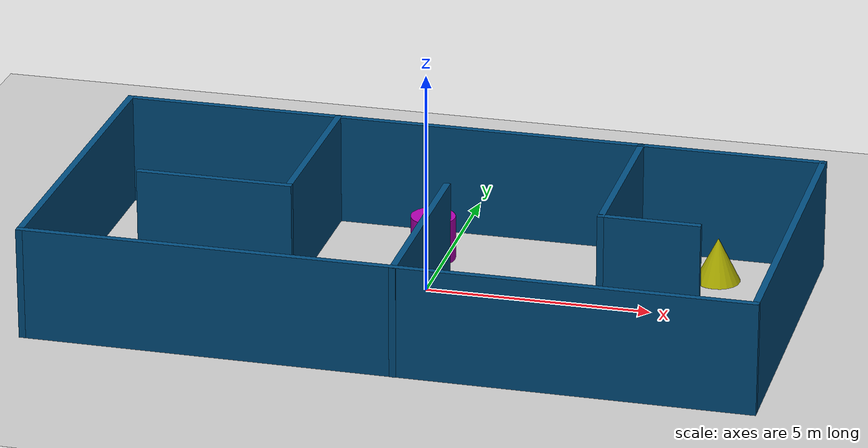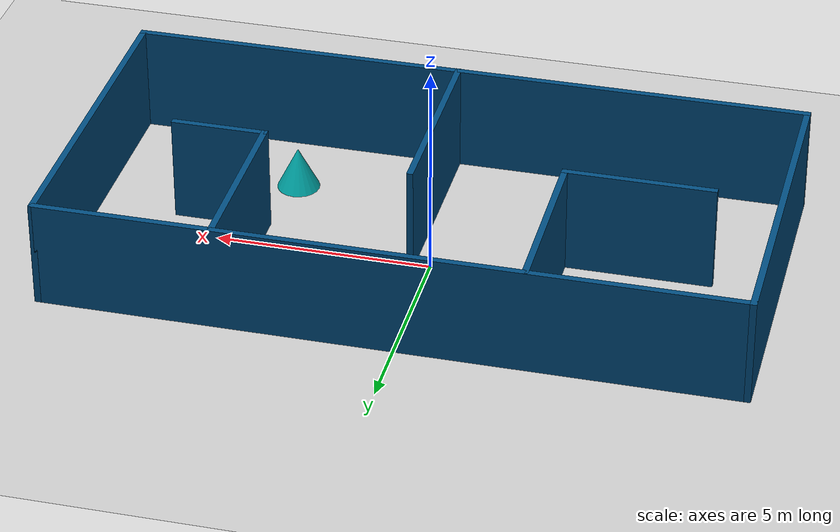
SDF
<sdf version="1.10">
 <world name="tugbot_nav_world">
  <plugin name="gz::sim::systems::Physics" filename="gz-sim-physics-system"/>
  <plugin name="gz::sim::systems::UserCommands" filename="gz-sim-user-commands-system"/>
  <plugin name="gz::sim::systems::SceneBroadcaster" filename="gz-sim-scene-broadcaster-system"/>
  <plugin name="gz::sim::systems::Sensors" filename="gz-sim-sensors-system">
   <render_engine>ogre2</render_engine>
  </plugin>
  <plugin name="gz::sim::systems::Imu" filename="gz-sim-imu-system"/>
  <scene>
   <shadows>false</shadows>
   <ambient>0.400000006 0.400000006 0.400000006 1</ambient>
   <background>0.699999988 0.699999988 0.699999988 1</background>
  </scene>
  <physics name="3ms" type="ode">
   <max_step_size>0.0030000000000000001</max_step_size>
   <real_time_factor>1</real_time_factor>
   <real_time_update_rate>1000</real_time_update_rate>
  </physics>
  <gravity>0 0 -9.8000000000000007</gravity>
  <magnetic_field>5.5644999999999998e-06 2.2875799999999999e-05 -4.2388400000000002e-05</magnetic_field>
  <atmosphere type="adiabatic"/>
  <model name="ground_plane">
   <static>true</static>
   <link name="link">
    <collision name="collision">
     <geometry><plane><normal>0 0 1</normal><size>1 1</size></plane></geometry>
    </collision>
    <visual name="visual">
     <geometry><plane><normal>0 0 1</normal><size>100 100</size></plane></geometry>
     <material>
      <ambient>0.800000012 0.800000012 0.800000012 1</ambient>
      <diffuse>0.800000012 0.800000012 0.800000012 1</diffuse>
      <specular>0.800000012 0.800000012 0.800000012 1</specular>
     </material>
    </visual>
    <inertial>
     <mass>1</mass>
     <inertia><ixx>1</ixx><ixy>0</ixy><ixz>0</ixz><iyy>1</iyy><iyz>0</iyz><izz>1</izz></inertia>
    </inertial>
   </link>
  </model>
  <model name="room">
   <pose>0.19028100000000001 0.41132299999999988 0 0 0 0</pose>
   <link name="Wall_40">
    <collision name="Wall_40_Collision">
     <geometry><box><size>16 0.14999999999999999 2.5</size></box></geometry>
     <pose>0 0 1.25 0 0 0</pose>
    </collision>
    <visual name="Wall_40_Visual">
     <pose>0 0 1.25 0 0 0</pose>
     <geometry><box><size>16 0.14999999999999999 2.5</size></box></geometry>
     <material>
      <ambient>0 0.300000012 0.5 1</ambient>
      <diffuse>0 0.300000012 0.5 1</diffuse>
      <specular>0 0.300000012 0.5 1</specular>
     </material>
     <meta><layer>0</layer></meta>
    </visual>
    <pose>0 2.9285100000000002 0 0 0 0</pose>
    <inertial>
     <mass>1</mass>
     <inertia><ixx>1</ixx><ixy>0</ixy><ixz>0</ixz><iyy>1</iyy><iyz>0</iyz><izz>1</izz></inertia>
    </inertial>
   </link>
   <link name="Wall_41">
    <collision name="Wall_41_Collision">
     <geometry><box><size>8 0.14999999999999999 2.5</size></box></geometry>
     <pose>0 0 1.25 0 0 0</pose>
    </collision>
    <visual name="Wall_41_Visual">
     <pose>0 0 1.25 0 0 0</pose>
     <geometry><box><size>8 0.14999999999999999 2.5</size></box></geometry>
     <material>
      <ambient>0 0.300000012 0.5 1</ambient>
      <diffuse>0 0.300000012 0.5 1</diffuse>
      <specular>0 0.300000012 0.5 1</specular>
     </material>
     <meta><layer>0</layer></meta>
    </visual>
    <pose>7.9249999999999998 -0.99648599999999998 0 0 0 -1.5708000000000006</pose>
    <inertial>
     <mass>1</mass>
     <inertia><ixx>1</ixx><ixy>0</ixy><ixz>0</ixz><iyy>1</iyy><iyz>0</iyz><izz>1</izz></inertia>
    </inertial>
   </link>
   <link name="Wall_42">
    <collision name="Wall_42_Collision">
     <geometry><box><size>16 0.14999999999999999 2.5</size></box></geometry>
     <pose>0 0 1.25 0 0 0</pose>
    </collision>
    <visual name="Wall_42_Visual">
     <pose>0 0 1.25 0 0 0</pose>
     <geometry><box><size>16 0.14999999999999999 2.5</size></box></geometry>
     <material>
      <ambient>0 0.300000012 0.5 1</ambient>
      <diffuse>0 0.300000012 0.5 1</diffuse>
      <specular>0 0.300000012 0.5 1</specular>
     </material>
     <meta><layer>0</layer></meta>
    </visual>
    <pose>0 -4.9214900000000004 0 0 0 3.1415899999999999</pose>
    <inertial>
     <mass>1</mass>
     <inertia><ixx>1</ixx><ixy>0</ixy><ixz>0</ixz><iyy>1</iyy><iyz>0</iyz><izz>1</izz></inertia>
    </inertial>
   </link>
   <link name="Wall_43">
    <collision name="Wall_43_Collision">
     <geometry><box><size>8 0.14999999999999999 2.5</size></box></geometry>
     <pose>0 0 1.25 0 0 0</pose>
    </collision>
    <visual name="Wall_43_Visual">
     <pose>0 0 1.25 0 0 0</pose>
     <geometry><box><size>8 0.14999999999999999 2.5</size></box></geometry>
     <material>
      <ambient>0 0.300000012 0.5 1</ambient>
      <diffuse>0 0.300000012 0.5 1</diffuse>
      <specular>0 0.300000012 0.5 1</specular>
     </material>
     <meta><layer>0</layer></meta>
    </visual>
    <pose>-7.9249999999999998 -0.99648599999999998 0 0 0 1.5708000000000006</pose>
    <inertial>
     <mass>1</mass>
     <inertia><ixx>1</ixx><ixy>0</ixy><ixz>0</ixz><iyy>1</iyy><iyz>0</iyz><izz>1</izz></inertia>
    </inertial>
   </link>
   <link name="Wall_45">
    <collision name="Wall_45_Collision">
     <geometry><box><size>4.25 0.14999999999999999 2.5</size></box></geometry>
     <pose>0 0 1.25 0 0 0</pose>
    </collision>
    <visual name="Wall_45_Visual">
     <pose>0 0 1.25 0 0 0</pose>
     <geometry><box><size>4.25 0.14999999999999999 2.5</size></box></geometry>
     <material>
      <ambient>0 0.300000012 0.5 1</ambient>
      <diffuse>0 0.300000012 0.5 1</diffuse>
      <specular>0 0.300000012 0.5 1</specular>
     </material>
     <meta><layer>0</layer></meta>
    </visual>
    <pose>-3.0589 0.85249200000000003 0 0 0 -1.5708000000000006</pose>
    <inertial>
     <mass>1</mass>
     <inertia><ixx>1</ixx><ixy>0</ixy><ixz>0</ixz><iyy>1</iyy><iyz>0</iyz><izz>1</izz></inertia>
    </inertial>
   </link>
   <link name="Wall_46">
    <collision name="Wall_46_Collision">
     <geometry><box><size>3.5 0.14999999999999999 2.5</size></box></geometry>
     <pose>0 0 1.25 0 0 0</pose>
    </collision>
    <visual name="Wall_46_Visual">
     <pose>0 0 1.25 0 0 0</pose>
     <geometry><box><size>3.5 0.14999999999999999 2.5</size></box></geometry>
     <material>
      <ambient>0 0.300000012 0.5 1</ambient>
      <diffuse>0 0.300000012 0.5 1</diffuse>
      <specular>0 0.300000012 0.5 1</specular>
     </material>
     <meta><layer>0</layer></meta>
    </visual>
    <pose>-4.7339000000000002 -1.1975100000000001 0 0 0 3.1415899999999999</pose>
    <inertial>
     <mass>1</mass>
     <inertia><ixx>1</ixx><ixy>0</ixy><ixz>0</ixz><iyy>1</iyy><iyz>0</iyz><izz>1</izz></inertia>
    </inertial>
   </link>
   <link name="Wall_48">
    <collision name="Wall_48_Collision">
     <geometry><box><size>4.25 0.14999999999999999 2.5</size></box></geometry>
     <pose>0 0 1.25 0 0 0</pose>
    </collision>
    <visual name="Wall_48_Visual">
     <pose>0 0 1.25 0 0 0</pose>
     <geometry><box><size>4.25 0.14999999999999999 2.5</size></box></geometry>
     <material>
      <ambient>0 0.300000012 0.5 1</ambient>
      <diffuse>0 0.300000012 0.5 1</diffuse>
      <specular>0 0.300000012 0.5 1</specular>
     </material>
     <meta><layer>0</layer></meta>
    </visual>
    <pose>3.8629399999999996 0.85249200000000003 0 0 0 -1.5708000000000006</pose>
    <inertial>
     <mass>1</mass>
     <inertia><ixx>1</ixx><ixy>0</ixy><ixz>0</ixz><iyy>1</iyy><iyz>0</iyz><izz>1</izz></inertia>
    </inertial>
   </link>
   <link name="Wall_49">
    <collision name="Wall_49_Collision">
     <geometry><box><size>2.25 0.14999999999999999 2.5</size></box></geometry>
     <pose>0 0 1.25 0 0 0</pose>
    </collision>
    <visual name="Wall_49_Visual">
     <pose>0 0 1.25 0 0 0</pose>
     <geometry><box><size>2.25 0.14999999999999999 2.5</size></box></geometry>
     <material>
      <ambient>0 0.300000012 0.5 1</ambient>
      <diffuse>0 0.300000012 0.5 1</diffuse>
      <specular>0 0.300000012 0.5 1</specular>
     </material>
     <meta><layer>0</layer></meta>
    </visual>
    <pose>4.9129399999999999 -1.1975100000000001 0 0 0 0</pose>
    <inertial>
     <mass>1</mass>
     <inertia><ixx>1</ixx><ixy>0</ixy><ixz>0</ixz><iyy>1</iyy><iyz>0</iyz><izz>1</izz></inertia>
    </inertial>
   </link>
   <link name="Wall_51">
    <collision name="Wall_51_Collision">
     <geometry><box><size>4.75 0.14999999999999999 2.5</size></box></geometry>
     <pose>0 0 1.25 0 0 0</pose>
    </collision>
    <visual name="Wall_51_Visual">
     <pose>0 0 1.25 0 0 0</pose>
     <geometry><box><size>4.75 0.14999999999999999 2.5</size></box></geometry>
     <material>
      <ambient>0 0.300000012 0.5 1</ambient>
      <diffuse>0 0.300000012 0.5 1</diffuse>
      <specular>0 0.300000012 0.5 1</specular>
     </material>
     <meta><layer>0</layer></meta>
    </visual>
    <pose>0.24588699999999999 -2.6301100000000002 0 0 0 1.5708000000000006</pose>
    <inertial>
     <mass>1</mass>
     <inertia><ixx>1</ixx><ixy>0</ixy><ixz>0</ixz><iyy>1</iyy><iyz>0</iyz><izz>1</izz></inertia>
    </inertial>
   </link>
   <static>true</static>
  </model>
  <model name="cylinder">
   <pose>-0.28174589908613878 1.7593853510008017 0.49999957929137095 7.6242633042885864e-18 1.183004782026071e-17 2.9029002261157602e-19</pose>
   <link name="cylinder_link">
    <inertial>
     <inertia>
      <ixx>0.14580000000000001</ixx>
      <ixy>0</ixy>
      <ixz>0</ixz>
      <iyy>0.14580000000000001</iyy>
      <iyz>0</iyz>
      <izz>0.125</izz>
     </inertia>
     <mass>1</mass>
    </inertial>
    <collision name="cylinder_collision">
     <geometry><cylinder><radius>0.5</radius><length>1</length></cylinder></geometry>
    </collision>
    <visual name="cylinder_visual">
     <geometry><cylinder><radius>0.5</radius><length>1</length></cylinder></geometry>
     <material>
      <ambient>0.300000012 0.0 0.300000012 1</ambient>
      <diffuse>0.699999988 0.0 0.699999988 1</diffuse>
      <specular>1 1 1 1</specular>
     </material>
    </visual>
   </link>
   <static>false</static>
  </model>
  <model name="cylinder_0">
   <pose>-4.3762434998200384 -2.5839930448663648 0.49999957929137095 -2.6871098235721798e-18 1.6009795192494862e-18 -3.6000291694704327e-19</pose>
   <link name="cylinder_link">
    <inertial>
     <inertia>
      <ixx>0.14580000000000001</ixx>
      <ixy>0</ixy>
      <ixz>0</ixz>
      <iyy>0.14580000000000001</iyy>
      <iyz>0</iyz>
      <izz>0.125</izz>
     </inertia>
     <mass>1</mass>
    </inertial>
    <collision name="cylinder_collision">
     <geometry><cylinder><radius>0.5</radius><length>1</length></cylinder></geometry>
    </collision>
    <visual name="cylinder_visual">
     <geometry><cylinder><radius>0.5</radius><length>1</length></cylinder></geometry>
     <material>
      <ambient>0 0.300000012 0.300000012 1</ambient>
      <diffuse>0 0.699999988 0.699999988 1</diffuse>
      <specular>1 1 1 1</specular>
     </material>
    </visual>
   </link>
   <static>false</static>
  </model>
  <model name="cylinder_1">
   <pose>-5.3144544448758371 2.0310737793521332 0.49999957929137095 -4.021647956674904e-19 5.6421935922939518e-18 -2.3905993429301614e-19</pose>
   <link name="cylinder_link">
    <inertial>
     <inertia>
      <ixx>0.14580000000000001</ixx>
      <ixy>0</ixy>
      <ixz>0</ixz>
      <iyy>0.14580000000000001</iyy>
      <iyz>0</iyz>
      <izz>0.125</izz>
     </inertia>
     <mass>1</mass>
    </inertial>
    <collision name="cylinder_collision">
     <geometry><cylinder><radius>0.5</radius><length>1</length></cylinder></geometry>
    </collision>
    <visual name="cylinder_visual">
     <geometry><cylinder><radius>0.5</radius><length>1</length></cylinder></geometry>
     <material>
      <ambient>0 0.300000012 0.300000012 1</ambient>
      <diffuse>0 0.699999988 0.699999988 1</diffuse>
      <specular>1 1 1 1</specular>
     </material>
    </visual>
   </link>
   <static>false</static>
  </model>
  <model name="cone">
   <pose>3.805579848063759 -2.5960888656381456 0.49999999990741445 9.7458137083044092e-12 2.7605742627346979e-18 -1.599031754893995e-22</pose>
   <link name="cone_link">
    <inertial>
     <inertia>
      <ixx>0.074999999999999997</ixx>
      <ixy>0</ixy>
      <ixz>0</ixz>
      <iyy>0.074999999999999997</iyy>
      <iyz>0</iyz>
      <izz>0.074999999999999997</izz>
     </inertia>
     <mass>1</mass>
    </inertial>
    <collision name="cone_collision">
     <geometry><cone><radius>0.5</radius><length>1</length></cone></geometry>
    </collision>
    <visual name="cone_visual">
     <geometry><cone><radius>0.5</radius><length>1</length></cone></geometry>
     <material>
      <ambient>0 0.300000012 0.300000012 1</ambient>
      <diffuse>0 0.699999988 0.699999988 1</diffuse>
      <specular>1 1 1 1</specular>
     </material>
    </visual>
   </link>
   <static>false</static>
  </model>
  <model name="cone_0">
   <pose>6.0753818100601649 2.0667701473945264 0.49999999990741445 9.745813739556616e-12 2.8554059859054303e-18 3.6963418841080018e-21</pose>
   <link name="cone_link">
    <inertial>
     <inertia>
      <ixx>0.074999999999999997</ixx>
      <ixy>0</ixy>
      <ixz>0</ixz>
      <iyy>0.074999999999999997</iyy>
      <iyz>0</iyz>
      <izz>0.074999999999999997</izz>
     </inertia>
     <mass>1</mass>
    </inertial>
    <collision name="cone_collision">
     <geometry><cone><radius>0.5</radius><length>1</length></cone></geometry>
    </collision>
    <visual name="cone_visual">
     <geometry><cone><radius>0.5</radius><length>1</length></cone></geometry>
     <material>
      <ambient>0.300000012 0.300000012 0 1</ambient>
      <diffuse>0.699999988 0.699999988 0 1</diffuse>
      <specular>1 1 1 1</specular>
     </material>
    </visual>
   </link>
   <static>false</static>
  </model>
  <light name="sun" type="directional">
   <pose>0 0 10 0 0 0</pose>
   <intensity>1</intensity>
   <direction>-0.5 0.10000000000000001 -0.90000000000000002</direction>
   <diffuse>0.800000012 0.800000012 0.800000012 1</diffuse>
   <specular>0.200000003 0.200000003 0.200000003 1</specular>
   <attenuation>
    <range>1000</range>
    <linear>0.0099999997764825821</linear>
    <constant>0.89999997615814209</constant>
    <quadratic>0.0010000000474974513</quadratic>
   </attenuation>
   <spot><inner_angle>0</inner_angle><outer_angle>0</outer_angle><falloff>0</falloff></spot>
  </light>
 </world>
</sdf>
